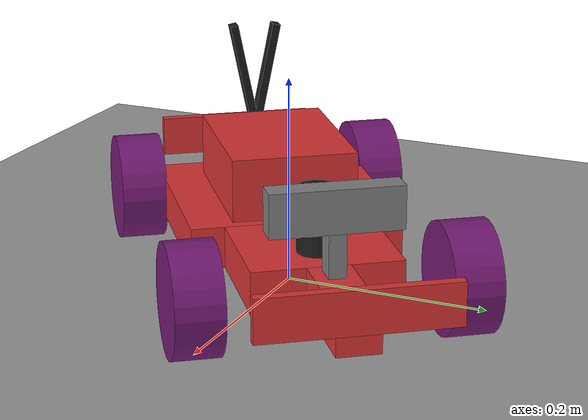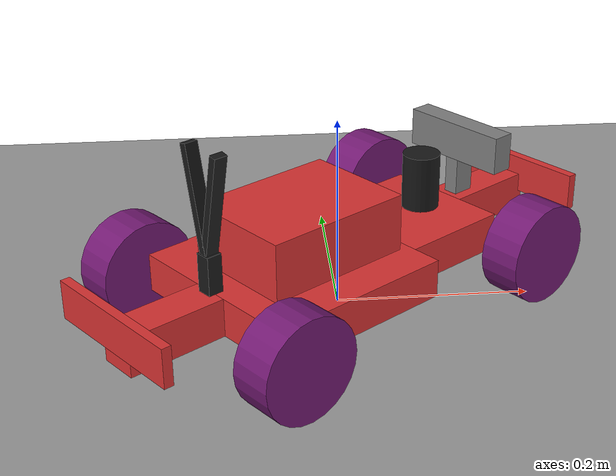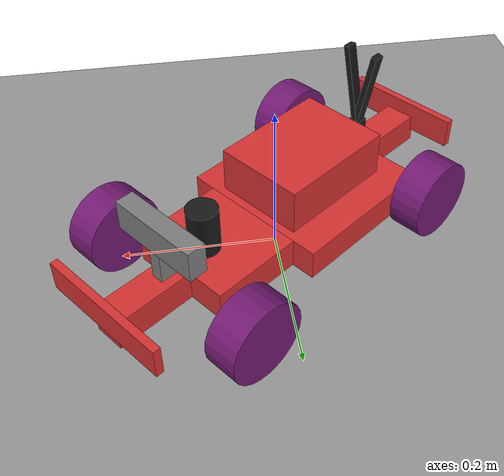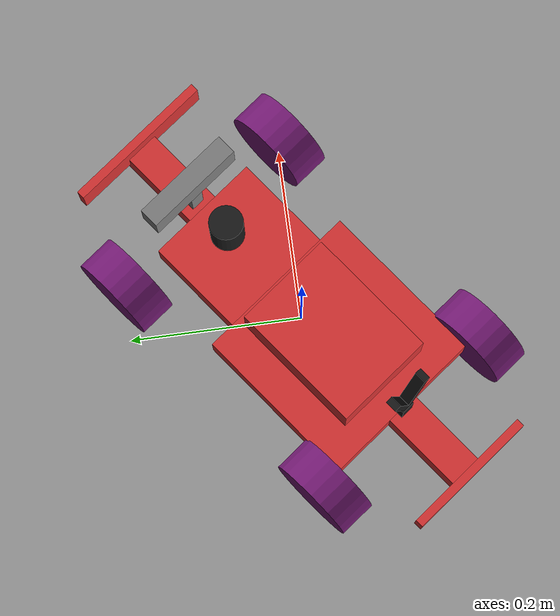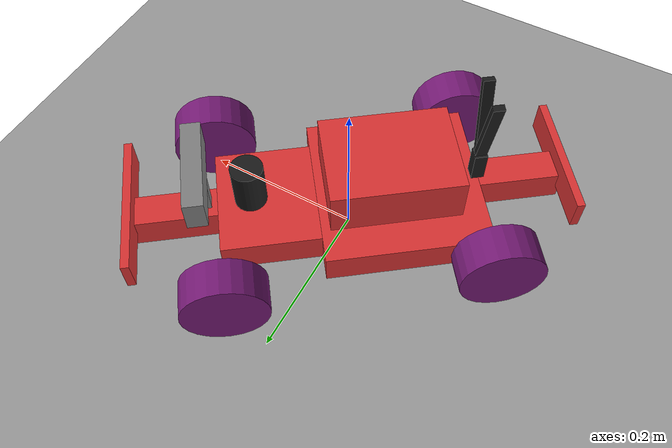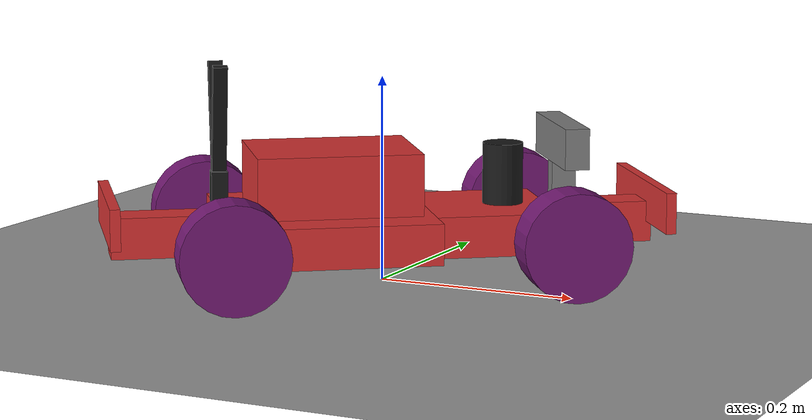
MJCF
<mujoco><include file="scene_without_walls.xml" /><worldbody><body name="Fleet1Tenth_0" pos="0.0 0.0 .052388" quat="0.9485664043524404 0 0 0.31657823130133655"><inertial pos="0 0 0" diaginertia=".05 .05 .08" mass="3.0" /><joint name="Fleet1Tenth_0" type="free" /><site name="Fleet1Tenth_0_cog" pos="0 0 0" /><geom name="Fleet1Tenth_0_chassis_b" type="box" contype="0" conaffinity="0" size=".10113 .1016 .02" pos="-.06 0 0" rgba="0.85 0.2 0.2 1.0" /><geom name="Fleet1Tenth_0_chassis_f" type="box" contype="0" conaffinity="0" size=".06 .07 .02" pos=".10113 0 0" rgba="0.85 0.2 0.2 1.0" /><geom name="Fleet1Tenth_0_front" type="box" contype="0" conaffinity="0" size=".052388 .02 .02" pos=".2135 0 0" rgba="0.85 0.2 0.2 1.0" /><geom name="Fleet1Tenth_0_back" type="box" contype="0" conaffinity="0" size=".052388 .02 .02" pos="-.2135 0 0" rgba="0.85 0.2 0.2 1.0" /><geom name="Fleet1Tenth_0_front_bumper" type="box" contype="0" conaffinity="0" size=".005 .09 .02" pos=".265888 0 0.02" rgba="0.85 0.2 0.2 1.0" /><geom name="Fleet1Tenth_0_back_bumper" type="box" contype="0" conaffinity="0" size=".005 .08 .02" pos="-.265888 0 0.02" rgba="0.85 0.2 0.2 1.0" /><geom name="Fleet1Tenth_0_number" type="cylinder" contype="0" conaffinity="0" size=".01984 .03" pos=".12 0 .05" rgba="0.1 0.1 0.1 1.0" /><geom name="Fleet1Tenth_0_camera" type="box" contype="0" conaffinity="0" size=".012 .06 0.02" pos=".18 0 .08" /><geom name="Fleet1Tenth_0_camera_holder" type="box" contype="0" conaffinity="0" size=".012 .008 .02" pos=".18 0 .04" /><geom name="Fleet1Tenth_0_circuits" type="box" contype="0" conaffinity="0" size=".08 .06 .03" pos="-.05 0 .05" rgba="0.85 0.2 0.2 1.0" /><geom name="Fleet1Tenth_0_antennal" type="box" contype="0" conaffinity="0" size=".007 .004 .06" pos="-.16 -.01 .105" euler="0.2 0 0" rgba=".1 .1 .1 1.0" /><geom name="Fleet1Tenth_0_antennar" type="box" contype="0" conaffinity="0" size=".007 .004 .06" pos="-.16 .01 .105" euler="-0.2 0 0" rgba=".1 .1 .1 1.0" /><geom name="Fleet1Tenth_0_antenna_holder" type="box" contype="0" conaffinity="0" size=".008 .008 .02" pos="-.16 0 .04" rgba=".1 .1 .1 1.0" /><body name="Fleet1Tenth_0_wheelfl"><joint name="Fleet1Tenth_0_wheelfl_steer" type="hinge" pos="0.16113 .10016 0" limited="true" frictionloss="0.2" damping="0.2" armature="0.001" range="-0.6 0.6" axis="0 0 1" /><joint name="Fleet1Tenth_0_wheelfl" type="hinge" pos="0.16113 .122385 0" axis="0 1 0" frictionloss="0.01" damping="0.00001" armature="0.05" limited="false" /><geom name="Fleet1Tenth_0_wheelfl" type="cylinder" contype="0" conaffinity="0" size=".052388 .022225" pos="0.16113 .122385 0" mass="0.1" material="material_check" euler="1.571 0 0" /></body><body name="Fleet1Tenth_0_wheelrl"><joint name="Fleet1Tenth_0_wheelrl" type="hinge" pos="-0.16113 .122385 0" axis="0 1 0" frictionloss="0.01" damping="0.00001" armature="0.05" limited="false" /><geom name="Fleet1Tenth_0_wheelrl" type="cylinder" contype="0" conaffinity="0" size=".052388 .022225" pos="-0.16113 .122385 0" mass="0.1" material="material_check" euler="1.571 0 0" /></body><body name="Fleet1Tenth_0_wheelfr"><joint name="Fleet1Tenth_0_wheelfr_steer" type="hinge" pos="0.16113 -.10016 0" limited="true" frictionloss="0.2" damping="0.2" armature="0.001" range="-0.6 0.6" axis="0 0 1" /><joint name="Fleet1Tenth_0_wheelfr" type="hinge" pos="0.16113 -.122385 0" axis="0 1 0" frictionloss="0.01" damping="0.00001" armature="0.05" limited="false" /><geom name="Fleet1Tenth_0_wheelfr" type="cylinder" contype="0" conaffinity="0" size=".052388 .022225" pos="0.16113 -.122385 0" mass="0.1" material="material_check" euler="1.571 0 0" /></body><body name="Fleet1Tenth_0_wheelrr"><joint name="Fleet1Tenth_0_wheelrr" type="hinge" pos="-0.16113 -.122385 0" axis="0 1 0" frictionloss="0.01" damping="0.00001" armature="0.05" limited="false" /><geom name="Fleet1Tenth_0_wheelrr" type="cylinder" contype="0" conaffinity="0" size=".052388 .022225" pos="-0.16113 -.122385 0" mass="0.1" material="material_check" euler="1.571 0 0" /></body></body><body name="Fleet1Tenth_1" pos="0.0 0.0 .052388" quat="0.9485664043524404 0 0 0.31657823130133655"><inertial pos="0 0 0" diaginertia=".05 .05 .08" mass="3.0" /><joint name="Fleet1Tenth_1" type="free" /><site name="Fleet1Tenth_1_cog" pos="0 0 0" /><geom name="Fleet1Tenth_1_chassis_b" type="box" contype="0" conaffinity="0" size=".10113 .1016 .02" pos="-.06 0 0" rgba="0.1 0.1 0.1 1.0" /><geom name="Fleet1Tenth_1_chassis_f" type="box" contype="0" conaffinity="0" size=".06 .07 .02" pos=".10113 0 0" rgba="0.1 0.1 0.1 1.0" /><geom name="Fleet1Tenth_1_front" type="box" contype="0" conaffinity="0" size=".052388 .02 .02" pos=".2135 0 0" rgba="0.1 0.1 0.1 1.0" /><geom name="Fleet1Tenth_1_back" type="box" contype="0" conaffinity="0" size=".052388 .02 .02" pos="-.2135 0 0" rgba="0.1 0.1 0.1 1.0" /><geom name="Fleet1Tenth_1_front_bumper" type="box" contype="0" conaffinity="0" size=".005 .09 .02" pos=".265888 0 0.02" rgba="0.1 0.1 0.1 1.0" /><geom name="Fleet1Tenth_1_back_bumper" type="box" contype="0" conaffinity="0" size=".005 .08 .02" pos="-.265888 0 0.02" rgba="0.1 0.1 0.1 1.0" /><geom name="Fleet1Tenth_1_number" type="cylinder" contype="0" conaffinity="0" size=".01984 .03" pos=".12 0 .05" rgba="0.1 0.1 0.1 1.0" /><geom name="Fleet1Tenth_1_camera" type="box" contype="0" conaffinity="0" size=".012 .06 0.02" pos=".18 0 .08" /><geom name="Fleet1Tenth_1_camera_holder" type="box" contype="0" conaffinity="0" size=".012 .008 .02" pos=".18 0 .04" /><geom name="Fleet1Tenth_1_circuits" type="box" contype="0" conaffinity="0" size=".08 .06 .03" pos="-.05 0 .05" rgba="0.1 0.1 0.1 1.0" /><geom name="Fleet1Tenth_1_antennal" type="box" contype="0" conaffinity="0" size=".007 .004 .06" pos="-.16 -.01 .105" euler="0.2 0 0" rgba=".1 .1 .1 1.0" /><geom name="Fleet1Tenth_1_antennar" type="box" contype="0" conaffinity="0" size=".007 .004 .06" pos="-.16 .01 .105" euler="-0.2 0 0" rgba=".1 .1 .1 1.0" /><geom name="Fleet1Tenth_1_antenna_holder" type="box" contype="0" conaffinity="0" size=".008 .008 .02" pos="-.16 0 .04" rgba=".1 .1 .1 1.0" /><body name="Fleet1Tenth_1_wheelfl"><joint name="Fleet1Tenth_1_wheelfl_steer" type="hinge" pos="0.16113 .10016 0" limited="true" frictionloss="0.2" damping="0.2" armature="0.001" range="-0.6 0.6" axis="0 0 1" /><joint name="Fleet1Tenth_1_wheelfl" type="hinge" pos="0.16113 .122385 0" axis="0 1 0" frictionloss="0.01" damping="0.00001" armature="0.05" limited="false" /><geom name="Fleet1Tenth_1_wheelfl" type="cylinder" contype="0" conaffinity="0" size=".052388 .022225" pos="0.16113 .122385 0" mass="0.1" material="material_check" euler="1.571 0 0" /></body><body name="Fleet1Tenth_1_wheelrl"><joint name="Fleet1Tenth_1_wheelrl" type="hinge" pos="-0.16113 .122385 0" axis="0 1 0" frictionloss="0.01" damping="0.00001" armature="0.05" limited="false" /><geom name="Fleet1Tenth_1_wheelrl" type="cylinder" contype="0" conaffinity="0" size=".052388 .022225" pos="-0.16113 .122385 0" mass="0.1" material="material_check" euler="1.571 0 0" /></body><body name="Fleet1Tenth_1_wheelfr"><joint name="Fleet1Tenth_1_wheelfr_steer" type="hinge" pos="0.16113 -.10016 0" limited="true" frictionloss="0.2" damping="0.2" armature="0.001" range="-0.6 0.6" axis="0 0 1" /><joint name="Fleet1Tenth_1_wheelfr" type="hinge" pos="0.16113 -.122385 0" axis="0 1 0" frictionloss="0.01" damping="0.00001" armature="0.05" limited="false" /><geom name="Fleet1Tenth_1_wheelfr" type="cylinder" contype="0" conaffinity="0" size=".052388 .022225" pos="0.16113 -.122385 0" mass="0.1" material="material_check" euler="1.571 0 0" /></body><body name="Fleet1Tenth_1_wheelrr"><joint name="Fleet1Tenth_1_wheelrr" type="hinge" pos="-0.16113 -.122385 0" axis="0 1 0" frictionloss="0.01" damping="0.00001" armature="0.05" limited="false" /><geom name="Fleet1Tenth_1_wheelrr" type="cylinder" contype="0" conaffinity="0" size=".052388 .022225" pos="-0.16113 -.122385 0" mass="0.1" material="material_check" euler="1.571 0 0" /></body></body></worldbody><contact><pair geom1="Fleet1Tenth_0_wheelfl" geom2="roundabout" condim="6" friction="2.5 2.5 .009 .0001 .0001" /><pair geom1="Fleet1Tenth_0_wheelfr" geom2="roundabout" condim="6" friction="2.5 2.5 .009 .0001 .0001" /><pair geom1="Fleet1Tenth_0_wheelrl" geom2="roundabout" condim="6" friction="2.5 2.5 .009 .0001 .0001" /><pair geom1="Fleet1Tenth_0_wheelrr" geom2="roundabout" condim="6" friction="2.5 2.5 .009 .0001 .0001" /><pair geom1="Fleet1Tenth_1_wheelfl" geom2="roundabout" condim="6" friction="2.5 2.5 .009 .0001 .0001" /><pair geom1="Fleet1Tenth_1_wheelfr" geom2="roundabout" condim="6" friction="2.5 2.5 .009 .0001 .0001" /><pair geom1="Fleet1Tenth_1_wheelrl" geom2="roundabout" condim="6" friction="2.5 2.5 .009 .0001 .0001" /><pair geom1="Fleet1Tenth_1_wheelrr" geom2="roundabout" condim="6" friction="2.5 2.5 .009 .0001 .0001" /><exclude body1="Fleet1Tenth_1" body2="Fleet1Tenth_0" /></contact><actuator><motor name="Fleet1Tenth_0_wheelfl_actr" joint="Fleet1Tenth_0_wheelfl" /><motor name="Fleet1Tenth_0_wheelfr_actr" joint="Fleet1Tenth_0_wheelfr" /><motor name="Fleet1Tenth_0_wheelrl_actr" joint="Fleet1Tenth_0_wheelrl" /><motor name="Fleet1Tenth_0_wheelrr_actr" joint="Fleet1Tenth_0_wheelrr" /><position forcelimited="true" forcerange="-5 5" name="Fleet1Tenth_0_wheelfl_actr_steer" joint="Fleet1Tenth_0_wheelfl_steer" kp="15" /><position forcelimited="true" forcerange="-5 5" name="Fleet1Tenth_0_wheelfr_actr_steer" joint="Fleet1Tenth_0_wheelfr_steer" kp="15" /><motor name="Fleet1Tenth_1_wheelfl_actr" joint="Fleet1Tenth_1_wheelfl" /><motor name="Fleet1Tenth_1_wheelfr_actr" joint="Fleet1Tenth_1_wheelfr" /><motor name="Fleet1Tenth_1_wheelrl_actr" joint="Fleet1Tenth_1_wheelrl" /><motor name="Fleet1Tenth_1_wheelrr_actr" joint="Fleet1Tenth_1_wheelrr" /><position forcelimited="true" forcerange="-5 5" name="Fleet1Tenth_1_wheelfl_actr_steer" joint="Fleet1Tenth_1_wheelfl_steer" kp="15" /><position forcelimited="true" forcerange="-5 5" name="Fleet1Tenth_1_wheelfr_actr_steer" joint="Fleet1Tenth_1_wheelfr_steer" kp="15" /></actuator><sensor><gyro site="Fleet1Tenth_0_cog" name="Fleet1Tenth_0_gyro" /><velocimeter site="Fleet1Tenth_0_cog" name="Fleet1Tenth_0_velocimeter" /><framepos objtype="site" objname="Fleet1Tenth_0_cog" name="Fleet1Tenth_0_posimeter" /><framequat objtype="site" objname="Fleet1Tenth_0_cog" name="Fleet1Tenth_0_orimeter" /><accelerometer site="Fleet1Tenth_0_cog" name="Fleet1Tenth_0_accelerometer" /><gyro site="Fleet1Tenth_1_cog" name="Fleet1Tenth_1_gyro" /><velocimeter site="Fleet1Tenth_1_cog" name="Fleet1Tenth_1_velocimeter" /><framepos objtype="site" objname="Fleet1Tenth_1_cog" name="Fleet1Tenth_1_posimeter" /><framequat objtype="site" objname="Fleet1Tenth_1_cog" name="Fleet1Tenth_1_orimeter" /><accelerometer site="Fleet1Tenth_1_cog" name="Fleet1Tenth_1_accelerometer" /></sensor><option><flag contact="enable" /></option></mujoco>

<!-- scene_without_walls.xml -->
<mujoco model="Lagyi">

  <default class="main">
    <!--
    rotate by 90 degrees about the vertical axis
    to match the optitrack coordinate system
    -->

    <default class="lagyi">
      <geom quat="0 0 0.7071 0.7071" rgba="0.9 0.9 0.9 1"/>
    </default>

    <default class="pole">
      <geom rgba="0.1 0.1 0.1 1"/>
      <default class="pole_top">
        <geom type="cylinder" size="0.022 0.5" pos="0 0 0.5"/>
      </default>
      <default class="pole_bottom1">
        <geom type="box" size="0.02 0.205 0.02" quat="0.7071 0 0 0.7071" pos="0 0 0.02"/>
        <default class="pole_bottom2">
          <geom quat="1 0 0 0"/>
        </default>
      </default>
    </default>

    <default class="landing_zone">
      <geom type="box" pos="0 0 0.01" size="0.1175 0.0975 0.01" rgba="0.8 0.8 0.8 1.0"/>
    </default>
  </default>

  <compiler angle="radian" meshdir=""/>
  <option timestep="0.001"/>
  <visual>
    <quality shadowsize="8192"/>
  </visual>

  <asset>
    <mesh file="meshes/building/lagyi_cockpit.stl" name="cockpit" smoothnormal="true" scale="0.0085 0.0085 0.0085"/>
    <mesh file="meshes/building/lagyi_fal1.stl" name="fal1" smoothnormal="true" scale="0.0085 0.0085 0.0085"/>
    <mesh file="meshes/building/lagyi_fal2.stl" name="fal2" smoothnormal="true" scale="0.0085 0.0085 0.0085"/>
    <mesh file="meshes/building/lagyi_oszlop1.stl" name="oszlop1" smoothnormal="true" scale="0.0085 0.0085 0.0085"/>
    <mesh file="meshes/building/lagyi_oszlop2.stl" name="oszlop2" smoothnormal="true" scale="0.0085 0.0085 0.0085"/>
    <mesh file="meshes/building/lagyi_oszlop3.stl" name="oszlop3" smoothnormal="true" scale="0.0085 0.0085 0.0085"/>
    <mesh file="meshes/building/lagyi_oszlop4.stl" name="oszlop4" smoothnormal="true" scale="0.0085 0.0085 0.0085"/>

    <mesh file="meshes/bucket/Bucket3.obj" name="bucket" smoothnormal="false" scale="0.035 0.035 0.035"/>

    <texture type="skybox" builtin="gradient" rgb1=".3 .5 .7" rgb2="0 0 0" width="512" height="512"/>
    <texture name="grid" type="2d" builtin="checker" width="512" height="512" rgb1=".1 .1 .1" rgb2=".2 .2 .2"/>
    <texture name="tex-carpet" type="2d" file="textures/carpet_lagyi4.png"/>
    <texture name="tex-roundabout" type="2d" file="textures/roundabout.png"/>
    <texture name="tex-hospital" type="2d" file="textures/hospital.png"/>
    <texture name="tex-post_office" type="2d" file="textures/post_office.png"/>
    <texture name="tex-airport" type="2d" file="textures/airport.png"/>
    <texture name="tex-parking_lot" type="2d" file="textures/parking_lot.png"/>
    <texture name="tex-sztaki" type="2d" file="textures/sztaki.png"/>
    <texture name="tex-zandvoort" type="2d" file="textures/Zandvoort_map.png"/>
    <material name="grid" texture="grid" texrepeat="1 1" texuniform="true" reflectance=".05"/>
    <material name="mat-carpet" shininess="0.1" texrepeat="0.1308 0.1308" texture="tex-carpet" texuniform="true"/>
    <material name="mat-roundabout" reflectance="0.7" texrepeat="0.667 0.667" texture="tex-roundabout" texuniform="true"/>
    <material name="mat-hospital" reflectance="0.7" texrepeat="7.843 7.692" texture="tex-hospital" texuniform="true"/>
    <material name="mat-post_office" reflectance="0.7" texrepeat="7.843 7.843" texture="tex-post_office" texuniform="true"/>
    <material name="mat-airport" reflectance="0.7" texrepeat="9.524 9.524" texture="tex-airport" texuniform="true"/>
    <material name="mat-parking_lot" reflectance="0.7" texrepeat="9.524 8.696" texture="tex-parking_lot" texuniform="true"/>
    <material name="mat-sztaki" reflectance="0.7" texrepeat="9.524 9.524" texture="tex-sztaki" texuniform="true"/>
    <material name="mat-zandvoort" reflectance="0.7" texrepeat="0.08 0.08" texture="tex-zandvoort" texuniform="true"/>

    <texture name="tex_check" builtin="checker" type="2d" width="256" height="256" rgb1=".8 .1 .1" rgb2=".1 .1 .8"/>
    <material name="material_check" texture="tex_check" texrepeat="2 2" texuniform="true"/>
  </asset>

  <worldbody>
    <camera pos="2.867 -5.173 1.776" xyaxes="0.875 0.485 0.000 -0.139 0.252 0.958"/>
    <geom size="50 50 .05" type="plane" rgba="0.6 0.6 0.6 1.0" condim="3"/>

    <light dir="0 -0.3 -1" diffuse=".9 .9 .9" specular="0.6 0.9 0.6" pos="1 1 15" cutoff="70"/>
    <light dir="-.2 1 -.4" diffuse=".9 .9 .9" specular="0.6 0.9 0.6" pos="2 -5 6" cutoff="70"/>
    <light dir="-1.0 -1.0 -.4" diffuse=".9 .9 .9" specular="0.6 0.9 0.6" pos="10 10 6" cutoff="70"/>

    <geom name="roundabout" size="1.5 1.5 .05" quat="0.7071 0 0 0.7071" pos="0 0 0.001" type="plane" material="mat-roundabout" condim="3"/>
    <!--geom name="zandvoort" size="20 20 .05" quat="1 0 0 0" pos="8 0 0.005" type="plane" material="mat-zandvoort" condim="3"/-->

  </worldbody>

</mujoco>
